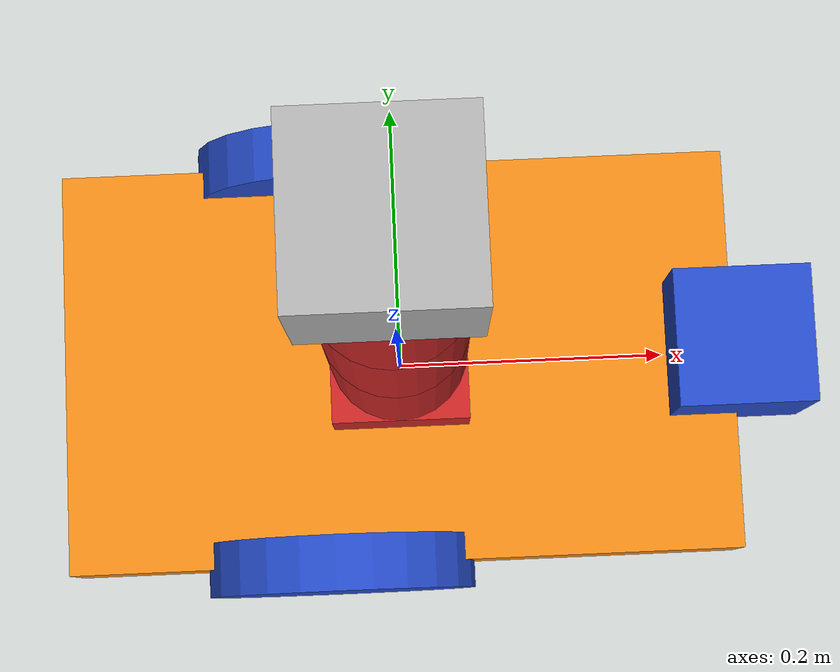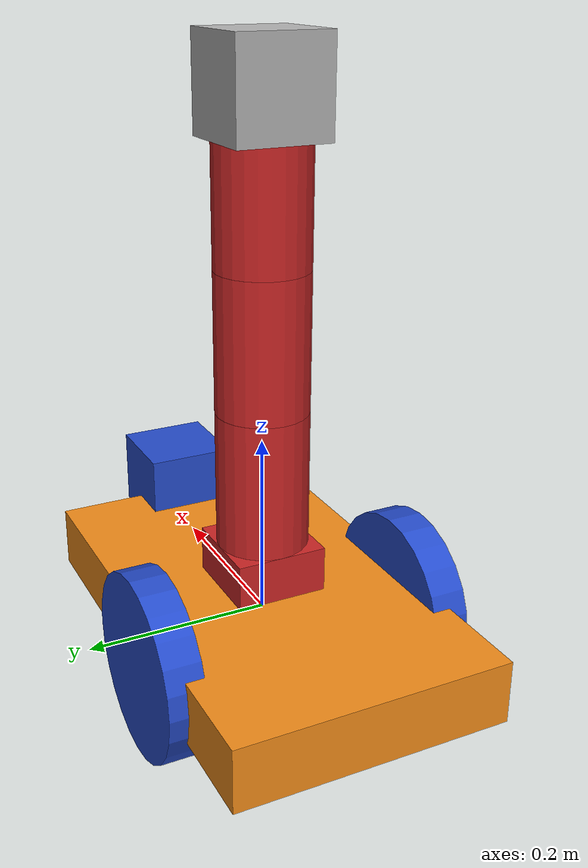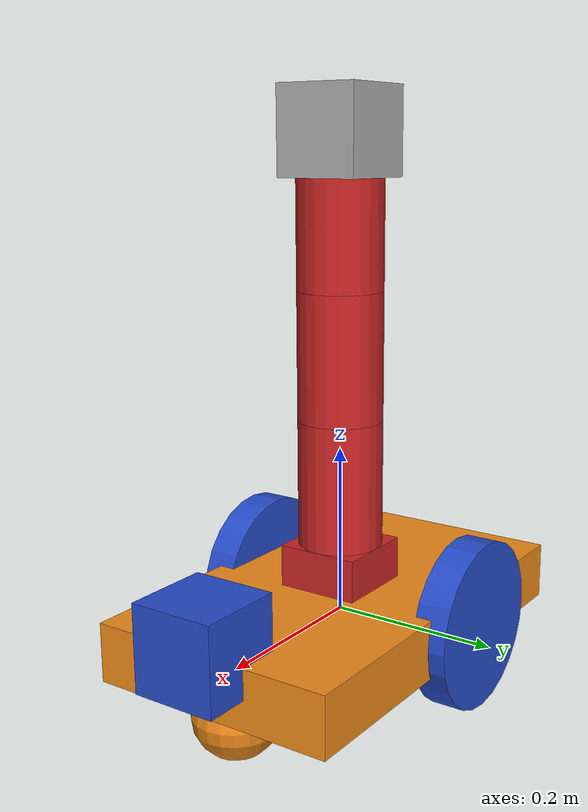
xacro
<?xml version="1.0" ?>
<robot name="robot_assignment" xmlns:xacro="https://www.ros.org/wiki/xacro" >

    <xacro:include filename="$(find ExpRoLab_Assignment2)/urdf/materials.xacro" />
    <xacro:include filename="$(find ExpRoLab_Assignment2)/urdf/robot_assignment.gazebo" />

    <!-- Macros for inertia -->
    <xacro:macro name="cylinder_inertia" params="mass r l">
        <inertia ixx="${mass*(3*r*r+l*l)/12}" ixy = "0" ixz = "0"
                 iyy="${mass*(3*r*r+l*l)/12}" iyz = "0" izz="${mass*(r*r)/2}" />
    </xacro:macro>

    <xacro:macro name="box_inertia" params="x y z mass">
        <inertia ixx="${mass*(y*y+z*z)/12}" ixy="0.0" ixz="0.0"
                 iyy="${mass*(x*x+z*z)/12}" iyz="0.0" izz="${mass*(x*x+y*y)/12}" />
    </xacro:macro>

    <!-- Macros with relative properties for the geometry -->
    <xacro:property name="wheel_length" value="0.04" />
    <xacro:property name="wheel_radius" value="0.1" />
    <xacro:macro name="wheel_geometry">
        <geometry>
            <cylinder length="${wheel_length}" radius="${wheel_radius}"/>
        </geometry>
    </xacro:macro>

    <xacro:property name="arm_link_length" value="0.15" />
    <xacro:property name="arm_link_radius" value="0.05" />
    <xacro:macro name="arm_link_geometry">
        <geometry>
            <cylinder length="${arm_link_length}" radius="${arm_link_radius}"/>
        </geometry>
    </xacro:macro>

    <!-- Macro for the wheels -->
    <xacro:macro name="link_wheel" params="name">
        <link name="${name}">
            <inertial>
                <mass value="0.2"/>
                <origin rpy="0 1.5707 1.5707" xyz="0 0 0"/>
                <xacro:cylinder_inertia mass="0.2" r="${wheel_radius}" l="${wheel_length}"/>
            </inertial>
            <collision name="${name}_collision">
                <origin rpy="0 1.5707 1.5707" xyz="0 0 0"/>
                <xacro:wheel_geometry />
            </collision>
            <visual name="${name}_visual">
                <origin rpy="0 1.5707 1.5707" xyz="0 0 0"/>
                <xacro:wheel_geometry />
                <material name="blue"/>
            </visual>
        </link>
    </xacro:macro>

    <!-- Macro for the arm links -->
    <xacro:macro name="arm_link" params="name">
        <link name="${name}">
            <inertial>
                <mass value="0.025"/>
                <origin xyz="0 0 0" rpy="0 0 0"/>
                <xacro:cylinder_inertia mass="0.025" r="${arm_link_radius}" l="${arm_link_length}"/>
            </inertial>
            <collision name="${name}_collision">
                <origin rpy="0 0 0" xyz="0 0 0.075"/>
                <xacro:arm_link_geometry />
            </collision>
            <visual name="${name}_visual">
                <origin rpy="0 0 0" xyz="0 0 0.075"/>
                <xacro:arm_link_geometry />
                <material name="red"/>
            </visual>
        </link>
    </xacro:macro>

    <!-- Macros for the joints -->
    <xacro:macro name="continuous_joint" params="name child parent origin_xyz axis_xyz">
        <joint name="${name}" type="continuous">
        <origin rpy="0 0 0" xyz="${origin_xyz}"/>
        <child link="${child}"/>
        <parent link="${parent}"/>
        <axis rpy="0 0 0" xyz="${axis_xyz}"/>
        <limit effort="10" velocity="10"/>
        <joint_properties damping="10.0" friction="0.1"/>
        </joint>
    </xacro:macro>

    <xacro:macro name="revolute_joint" params="name child parent origin_xyz axis_xyz">
        <joint name="${name}" type="revolute">
            <origin rpy="0 0 0" xyz="${origin_xyz}"/>
            <child link="${child}"/>
            <parent link="${parent}"/>
            <axis rpy="0 0 0" xyz="${axis_xyz}"/>
            <limit effort="10.0" upper = "1.0" lower = "-1.0" velocity="0.5"/>
            <joint_properties damping="10.0" friction="0.1"/>
        </joint>
    </xacro:macro>

    <xacro:macro name="fixed_joint" params="name child parent origin_xyz">
        <joint name="${name}" type="fixed">
            <origin rpy="0 0 0" xyz="${origin_xyz}"/>
            <child link="${child}"/>
            <parent link="${parent}"/>
        </joint>
    </xacro:macro>

    <!-- Create the chassis of the robot -->
    <link name="link_chassis">
        <pose>0 0 0.1 0 0 0</pose>
        <inertial>
            <mass value="5"/>
            <origin rpy="0 0 0" xyz="0 0 0.1"/>
            <xacro:box_inertia mass="5" x="0.5" y="0.3" z="0.07"/>
        </inertial>
        <collision name="collision_chassis">
            <geometry>
                <box size="0.5 0.3 0.07"/>
            </geometry>
        </collision>
        <visual>
            <origin rpy="0 0 0" xyz="0 0 0"/>
            <geometry>
                <box size="0.5 0.3 0.07"/>
            </geometry>
            <material name="orange"/>
        </visual>
        <!-- Caster front -->
        <collision name="caster_front_collision">
            <origin rpy=" 0 0 0" xyz="0.35 0 -0.05"/>
            <geometry>
                <sphere radius="0.05"/>
            </geometry>
            <surface>
                <friction>
                    <ode>
                        <mu>0</mu>
                        <mu2>0</mu2>
                        <slip1>1.0</slip1>
                        <slip2>1.0</slip2>
                    </ode>
                </friction>
            </surface>
        </collision>
        <visual name="caster_front_visual">
            <origin rpy=" 0 0 0" xyz="0.2 0 -0.05"/>
            <geometry>
                <sphere radius="0.05"/>
            </geometry>
        </visual>
    </link>

    <!-- Create the wheels of the robot -->
    <xacro:link_wheel name="link_right_wheel" />
    <xacro:link_wheel name="link_left_wheel" />
    <xacro:continuous_joint name="joint_right_wheel" child="link_right_wheel" parent="link_chassis" origin_xyz="-0.05 -0.15 0" axis_xyz="0 1 0"/>
    <xacro:continuous_joint name="joint_left_wheel" child="link_left_wheel" parent="link_chassis" origin_xyz="-0.05 0.15 0" axis_xyz="0 1 0"/>

    <!-- Create the arm base link and its joint -->
    <link name="arm_base_link">
        <inertial>
            <mass value="0.2"/>
            <origin xyz="0 0 0" rpy="0 0 0" />
            <xacro:box_inertia mass="0.2" x="0.1" y="0.1" z="0.05"/>
        </inertial>
        <collision>
            <origin xyz="0 0 0" rpy="0 0 0"/>
            <geometry>
                <box size="0.1 0.1 0.05"/>
            </geometry>
            </collision>
        <visual>
            <origin xyz="0 0 0" rpy="0 0 0"/>
            <geometry>
                <box size="0.1 0.1 0.05"/>
            </geometry>
            <material name="red"/>
        </visual>
    </link>

    <xacro:fixed_joint name="arm_base_joint" child="arm_base_link" parent="link_chassis" origin_xyz="0 0 0.06" />

    <!-- Create the arm link and their joints -->
    <xacro:arm_link name="arm_link_01"/>
	<xacro:arm_link name="arm_link_02"/>
	<xacro:arm_link name="arm_link_03"/>

    <xacro:continuous_joint name="arm_joint_01" child="arm_link_01" parent="arm_base_link" origin_xyz="0 0 0.025" axis_xyz="0 0 1"/>
	<xacro:revolute_joint name="arm_joint_02" child="arm_link_02" parent="arm_link_01" origin_xyz="0 0 0.15" axis_xyz="0 1 0"/>
	<xacro:revolute_joint name="arm_joint_03" child="arm_link_03" parent="arm_link_02" origin_xyz="0 0 0.15" axis_xyz="0 1 0"/>

    <!-- Create the camera -->
    <link name="camera_link">
        <inertial>
            <mass value="1e-5" />
            <origin xyz="0 0 0" rpy="0 0 0"/>
            <xacro:box_inertia mass="1e-5" x="0.1" y="0.1" z="0.1"/>
        </inertial>
        <collision>
            <origin xyz="0 0 0.025" rpy="0 0 0"/>
            <geometry>
                <box size="0.1 0.1 0.1"/>
            </geometry>
        </collision>
        <visual>
            <origin xyz="0 0 0.025" rpy="0 0 0"/>
            <geometry>
                <box size="0.1 0.1 0.1"/>
            </geometry>
        </visual>
	</link>

    <xacro:fixed_joint name="camera_joint" child="camera_link" parent="arm_link_03" origin_xyz="0 0 0.15" />

    <!-- Create the laser -->
    <link name="laser">
        <inertial>
            <origin xyz="0 0 0" rpy="0 0 0" />
            <mass value="1e-5" />
            <xacro:box_inertia mass="1e-5" x="0.1" y="0.1" z="0.1"/>
        </inertial>
        <visual>
            <origin xyz="0 0 0" rpy="0 0 0" />
            <geometry>
                <box size="0.1 0.1 0.1"/>
            </geometry>
            <material name="blue" />
        </visual>
        <collision>
            <origin xyz="0 0 0" rpy="0 0 0"/>
            <geometry>
                <box size="0.1 0.1 0.1"/>
            </geometry>
        </collision>
    </link>

    <xacro:fixed_joint name="laser_joint" child="laser" parent="link_chassis" origin_xyz="0.25 0 0.05" />

    <!-- Define the transmissions -->

	<transmission name="arm_joint_01_trans">
		<type>transmission_interface/SimpleTransmission</type>
		<joint name="arm_joint_01">
			<hardwareInterface>hardware_interface/EffortJointInterface</hardwareInterface>
		</joint>
		<actuator name="motor1">
			<hardwareInterface>hardware_interface/EffortJointInterface</hardwareInterface>
			<mechanicalInterface>1</mechanicalInterface>
		</actuator>
	</transmission>

	<transmission name="arm_joint_02_trans">
		<type>transmission_interface/SimpleTransmission</type>
		<joint name="arm_joint_02">
			<hardwareInterface>hardware_interface/EffortJointInterface</hardwareInterface>
		</joint>
		<actuator name="motor2">
			<hardwareInterface>hardware_interface/EffortJointInterface</hardwareInterface>
			<mechanicalInterface>1</mechanicalInterface>
		</actuator>
	</transmission>

	<transmission name="arm_joint_03_trans">
		<type>transmission_interface/SimpleTransmission</type>
		<joint name="arm_joint_03">
			<hardwareInterface>hardware_interface/EffortJointInterface</hardwareInterface>
		</joint>
		<actuator name="motor3">
			<hardwareInterface>hardware_interface/EffortJointInterface</hardwareInterface>
			<mechanicalInterface>1</mechanicalInterface>
		</actuator>
	</transmission>

 </robot>
